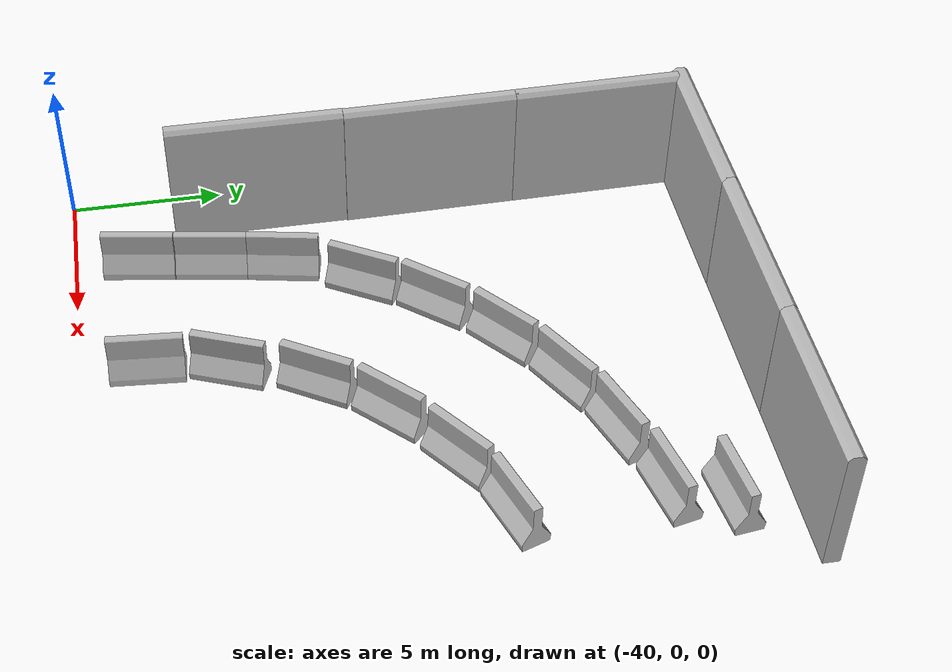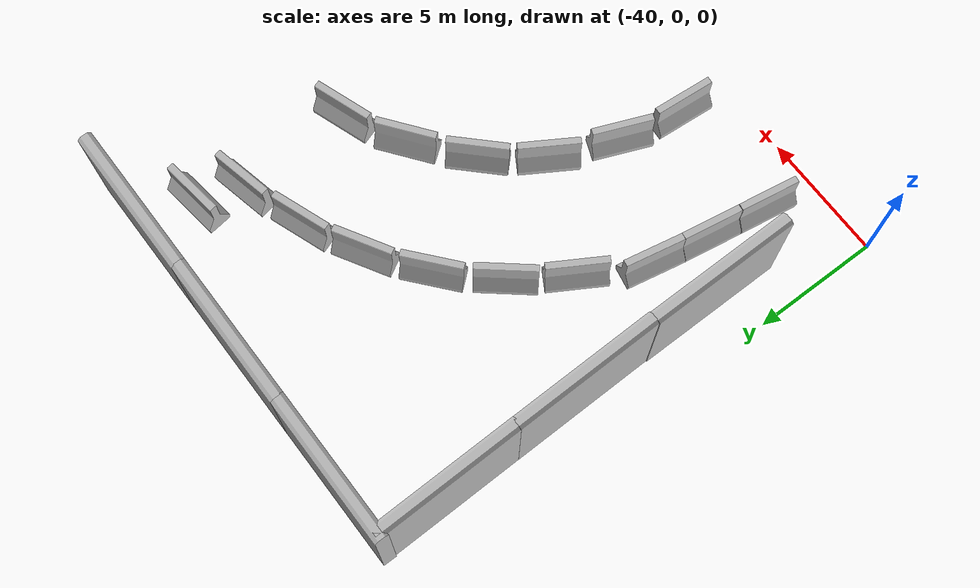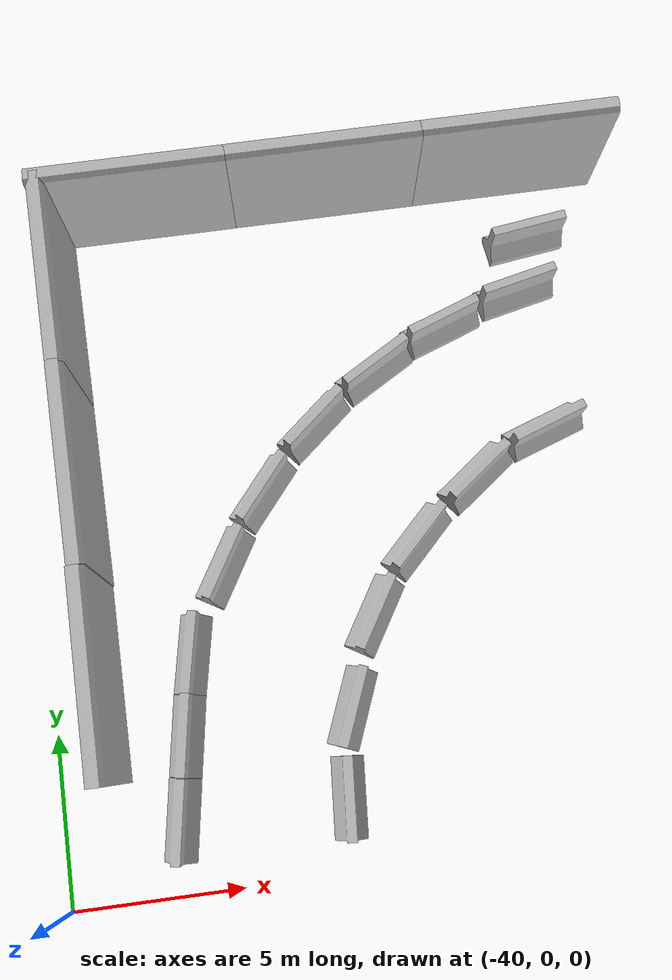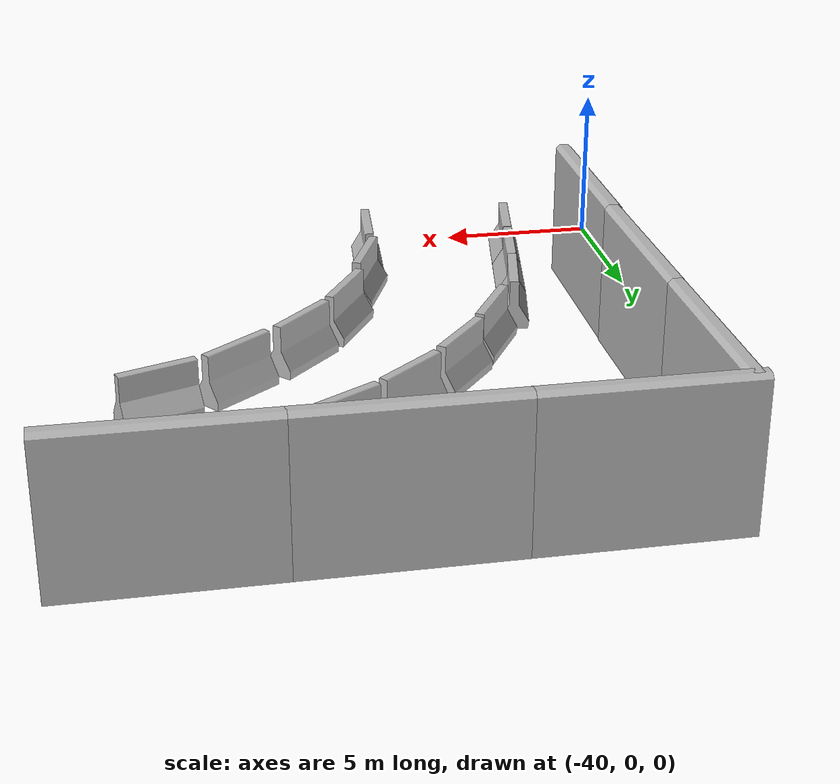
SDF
<sdf version="1.7">
 <world name="default">
  <model name="aws_robomaker_racetrack_StonePier_01_03">
   <frame name="aws_StonePier_01::__model__" attached_to="aws_StonePier_01::body">
    <pose relative_to="__model__">0 0 0 0 -0 0</pose>
   </frame>
   <link name="aws_StonePier_01::body">
    <pose relative_to="aws_StonePier_01::__model__">0 0 0 0 -0 0</pose>
    <inertial>
     <mass>10</mass>
     <inertia><ixx>0</ixx><ixy>0</ixy><ixz>0</ixz><iyy>0</iyy><iyz>0</iyz><izz>0</izz></inertia>
    </inertial>
    <visual name="visual">
     <geometry>
      <mesh><uri>file://models/aws_robomaker_racetrack_StonePier_01/meshes/aws_StonePier_01_visual.DAE</uri></mesh>
     </geometry>
     <material><shader type="pixel"><normal_map>__default__</normal_map></shader></material>
     <meta><layer>0</layer></meta>
    </visual>
    <collision name="collision_0">
     <geometry>
      <mesh>
       <uri>file://models/aws_robomaker_racetrack_StonePier_01/meshes/aws_StonePier_01_collision.DAE</uri>
       <scale>1 1 1</scale>
      </mesh>
     </geometry>
     <surface>
      <friction>
       <ode><mu>1</mu><mu2>1</mu2><fdir1>0 0 0</fdir1><slip1>0</slip1><slip2>0</slip2></ode>
       <torsional>
        <coefficient>1</coefficient>
        <patch_radius>0</patch_radius>
        <surface_radius>0</surface_radius>
        <use_patch_radius>1</use_patch_radius>
        <ode><slip>0</slip></ode>
       </torsional>
      </friction>
      <bounce><restitution_coefficient>0</restitution_coefficient><threshold>1e+06</threshold></bounce>
      <contact>
       <collide_without_contact>0</collide_without_contact>
       <collide_without_contact_bitmask>1</collide_without_contact_bitmask>
       <collide_bitmask>1</collide_bitmask>
       <ode>
        <soft_cfm>0</soft_cfm>
        <soft_erp>0.2</soft_erp>
        <kp>1e+13</kp>
        <kd>1</kd>
        <max_vel>0.01</max_vel>
        <min_depth>0</min_depth>
       </ode>
       <bullet>
        <split_impulse>1</split_impulse>
        <split_impulse_penetration_threshold>-0.01</split_impulse_penetration_threshold>
        <soft_cfm>0</soft_cfm>
        <soft_erp>0.2</soft_erp>
        <kp>1e+13</kp>
        <kd>1</kd>
       </bullet>
      </contact>
     </surface>
    </collision>
   </link>
   <static>1</static>
   <pose>-24.2891 12.2118 0.054 0 -0 0.334226</pose>
  </model>
  <model name="aws_robomaker_racetrack_StonePier_01_35">
   <frame name="aws_StonePier_01::__model__" attached_to="aws_StonePier_01::body">
    <pose relative_to="__model__">0 0 0 0 -0 0</pose>
   </frame>
   <link name="aws_StonePier_01::body">
    <pose relative_to="aws_StonePier_01::__model__">0 0 0 0 -0 0</pose>
    <inertial>
     <mass>10</mass>
     <inertia><ixx>0</ixx><ixy>0</ixy><ixz>0</ixz><iyy>0</iyy><iyz>0</iyz><izz>0</izz></inertia>
    </inertial>
    <visual name="visual">
     <geometry>
      <mesh><uri>file://models/aws_robomaker_racetrack_StonePier_01/meshes/aws_StonePier_01_visual.DAE</uri></mesh>
     </geometry>
     <material><shader type="pixel"><normal_map>__default__</normal_map></shader></material>
     <meta><layer>0</layer></meta>
    </visual>
    <collision name="collision_0">
     <geometry>
      <mesh>
       <uri>file://models/aws_robomaker_racetrack_StonePier_01/meshes/aws_StonePier_01_collision.DAE</uri>
       <scale>1 1 1</scale>
      </mesh>
     </geometry>
     <surface>
      <friction>
       <ode><mu>1</mu><mu2>1</mu2><fdir1>0 0 0</fdir1><slip1>0</slip1><slip2>0</slip2></ode>
       <torsional>
        <coefficient>1</coefficient>
        <patch_radius>0</patch_radius>
        <surface_radius>0</surface_radius>
        <use_patch_radius>1</use_patch_radius>
        <ode><slip>0</slip></ode>
       </torsional>
      </friction>
      <bounce><restitution_coefficient>0</restitution_coefficient><threshold>1e+06</threshold></bounce>
      <contact>
       <collide_without_contact>0</collide_without_contact>
       <collide_without_contact_bitmask>1</collide_without_contact_bitmask>
       <collide_bitmask>1</collide_bitmask>
       <ode>
        <soft_cfm>0</soft_cfm>
        <soft_erp>0.2</soft_erp>
        <kp>1e+13</kp>
        <kd>1</kd>
        <max_vel>0.01</max_vel>
        <min_depth>0</min_depth>
       </ode>
       <bullet>
        <split_impulse>1</split_impulse>
        <split_impulse_penetration_threshold>-0.01</split_impulse_penetration_threshold>
        <soft_cfm>0</soft_cfm>
        <soft_erp>0.2</soft_erp>
        <kp>1e+13</kp>
        <kd>1</kd>
       </bullet>
      </contact>
     </surface>
    </collision>
   </link>
   <static>1</static>
   <pose>-23.832 18.561 0.054 0 -0 0.133251</pose>
  </model>
  <model name="aws_robomaker_racetrack_StonePier_01_36">
   <frame name="aws_StonePier_01::__model__" attached_to="aws_StonePier_01::body">
    <pose relative_to="__model__">0 0 0 0 -0 0</pose>
   </frame>
   <link name="aws_StonePier_01::body">
    <pose relative_to="aws_StonePier_01::__model__">0 0 0 0 -0 0</pose>
    <inertial>
     <mass>10</mass>
     <inertia><ixx>0</ixx><ixy>0</ixy><ixz>0</ixz><iyy>0</iyy><iyz>0</iyz><izz>0</izz></inertia>
    </inertial>
    <visual name="visual">
     <geometry>
      <mesh><uri>file://models/aws_robomaker_racetrack_StonePier_01/meshes/aws_StonePier_01_visual.DAE</uri></mesh>
     </geometry>
     <material><shader type="pixel"><normal_map>__default__</normal_map></shader></material>
     <meta><layer>0</layer></meta>
    </visual>
    <collision name="collision_0">
     <geometry>
      <mesh>
       <uri>file://models/aws_robomaker_racetrack_StonePier_01/meshes/aws_StonePier_01_collision.DAE</uri>
       <scale>1 1 1</scale>
      </mesh>
     </geometry>
     <surface>
      <friction>
       <ode><mu>1</mu><mu2>1</mu2><fdir1>0 0 0</fdir1><slip1>0</slip1><slip2>0</slip2></ode>
       <torsional>
        <coefficient>1</coefficient>
        <patch_radius>0</patch_radius>
        <surface_radius>0</surface_radius>
        <use_patch_radius>1</use_patch_radius>
        <ode><slip>0</slip></ode>
       </torsional>
      </friction>
      <bounce><restitution_coefficient>0</restitution_coefficient><threshold>1e+06</threshold></bounce>
      <contact>
       <collide_without_contact>0</collide_without_contact>
       <collide_without_contact_bitmask>1</collide_without_contact_bitmask>
       <collide_bitmask>1</collide_bitmask>
       <ode>
        <soft_cfm>0</soft_cfm>
        <soft_erp>0.2</soft_erp>
        <kp>1e+13</kp>
        <kd>1</kd>
        <max_vel>0.01</max_vel>
        <min_depth>0</min_depth>
       </ode>
       <bullet>
        <split_impulse>1</split_impulse>
        <split_impulse_penetration_threshold>-0.01</split_impulse_penetration_threshold>
        <soft_cfm>0</soft_cfm>
        <soft_erp>0.2</soft_erp>
        <kp>1e+13</kp>
        <kd>1</kd>
       </bullet>
      </contact>
     </surface>
    </collision>
   </link>
   <static>1</static>
   <pose>-26.5946 11.0295 0.054 0 0.00036 0.646791</pose>
  </model>
  <model name="aws_robomaker_racetrack_StonePier_01_37">
   <frame name="aws_StonePier_01::__model__" attached_to="aws_StonePier_01::body">
    <pose relative_to="__model__">0 0 0 0 -0 0</pose>
   </frame>
   <link name="aws_StonePier_01::body">
    <pose relative_to="aws_StonePier_01::__model__">0 0 0 0 -0 0</pose>
    <inertial>
     <mass>10</mass>
     <inertia><ixx>0</ixx><ixy>0</ixy><ixz>0</ixz><iyy>0</iyy><iyz>0</iyz><izz>0</izz></inertia>
    </inertial>
    <visual name="visual">
     <geometry>
      <mesh><uri>file://models/aws_robomaker_racetrack_StonePier_01/meshes/aws_StonePier_01_visual.DAE</uri></mesh>
     </geometry>
     <material><shader type="pixel"><normal_map>__default__</normal_map></shader></material>
     <meta><layer>0</layer></meta>
    </visual>
    <collision name="collision_0">
     <geometry>
      <mesh>
       <uri>file://models/aws_robomaker_racetrack_StonePier_01/meshes/aws_StonePier_01_collision.DAE</uri>
       <scale>1 1 1</scale>
      </mesh>
     </geometry>
     <surface>
      <friction>
       <ode><mu>1</mu><mu2>1</mu2><fdir1>0 0 0</fdir1><slip1>0</slip1><slip2>0</slip2></ode>
       <torsional>
        <coefficient>1</coefficient>
        <patch_radius>0</patch_radius>
        <surface_radius>0</surface_radius>
        <use_patch_radius>1</use_patch_radius>
        <ode><slip>0</slip></ode>
       </torsional>
      </friction>
      <bounce><restitution_coefficient>0</restitution_coefficient><threshold>1e+06</threshold></bounce>
      <contact>
       <collide_without_contact>0</collide_without_contact>
       <collide_without_contact_bitmask>1</collide_without_contact_bitmask>
       <collide_bitmask>1</collide_bitmask>
       <ode>
        <soft_cfm>0</soft_cfm>
        <soft_erp>0.2</soft_erp>
        <kp>1e+13</kp>
        <kd>1</kd>
        <max_vel>0.01</max_vel>
        <min_depth>0</min_depth>
       </ode>
       <bullet>
        <split_impulse>1</split_impulse>
        <split_impulse_penetration_threshold>-0.01</split_impulse_penetration_threshold>
        <soft_cfm>0</soft_cfm>
        <soft_erp>0.2</soft_erp>
        <kp>1e+13</kp>
        <kd>1</kd>
       </bullet>
      </contact>
     </surface>
    </collision>
   </link>
   <static>1</static>
   <pose>-24.4271 16.8105 0.054 0 -0 0.217772</pose>
  </model>
  <model name="aws_robomaker_racetrack_StonePier_01_38">
   <frame name="aws_StonePier_01::__model__" attached_to="aws_StonePier_01::body">
    <pose relative_to="__model__">0 0 0 0 -0 0</pose>
   </frame>
   <link name="aws_StonePier_01::body">
    <pose relative_to="aws_StonePier_01::__model__">0 0 0 0 -0 0</pose>
    <inertial>
     <mass>10</mass>
     <inertia><ixx>0</ixx><ixy>0</ixy><ixz>0</ixz><iyy>0</iyy><iyz>0</iyz><izz>0</izz></inertia>
    </inertial>
    <visual name="visual">
     <geometry>
      <mesh><uri>file://models/aws_robomaker_racetrack_StonePier_01/meshes/aws_StonePier_01_visual.DAE</uri></mesh>
     </geometry>
     <material><shader type="pixel"><normal_map>__default__</normal_map></shader></material>
     <meta><layer>0</layer></meta>
    </visual>
    <collision name="collision_0">
     <geometry>
      <mesh>
       <uri>file://models/aws_robomaker_racetrack_StonePier_01/meshes/aws_StonePier_01_collision.DAE</uri>
       <scale>1 1 1</scale>
      </mesh>
     </geometry>
     <surface>
      <friction>
       <ode><mu>1</mu><mu2>1</mu2><fdir1>0 0 0</fdir1><slip1>0</slip1><slip2>0</slip2></ode>
       <torsional>
        <coefficient>1</coefficient>
        <patch_radius>0</patch_radius>
        <surface_radius>0</surface_radius>
        <use_patch_radius>1</use_patch_radius>
        <ode><slip>0</slip></ode>
       </torsional>
      </friction>
      <bounce><restitution_coefficient>0</restitution_coefficient><threshold>1e+06</threshold></bounce>
      <contact>
       <collide_without_contact>0</collide_without_contact>
       <collide_without_contact_bitmask>1</collide_without_contact_bitmask>
       <collide_bitmask>1</collide_bitmask>
       <ode>
        <soft_cfm>0</soft_cfm>
        <soft_erp>0.2</soft_erp>
        <kp>1e+13</kp>
        <kd>1</kd>
        <max_vel>0.01</max_vel>
        <min_depth>0</min_depth>
       </ode>
       <bullet>
        <split_impulse>1</split_impulse>
        <split_impulse_penetration_threshold>-0.01</split_impulse_penetration_threshold>
        <soft_cfm>0</soft_cfm>
        <soft_erp>0.2</soft_erp>
        <kp>1e+13</kp>
        <kd>1</kd>
       </bullet>
      </contact>
     </surface>
    </collision>
   </link>
   <static>1</static>
   <pose>-28.6752 9.30494 0.054 0 -0 0.789682</pose>
  </model>
  <model name="aws_robomaker_racetrack_StonePier_01_39">
   <frame name="aws_StonePier_01::__model__" attached_to="aws_StonePier_01::body">
    <pose relative_to="__model__">0 0 0 0 -0 0</pose>
   </frame>
   <link name="aws_StonePier_01::body">
    <pose relative_to="aws_StonePier_01::__model__">0 0 0 0 -0 0</pose>
    <inertial>
     <mass>10</mass>
     <inertia><ixx>0</ixx><ixy>0</ixy><ixz>0</ixz><iyy>0</iyy><iyz>0</iyz><izz>0</izz></inertia>
    </inertial>
    <visual name="visual">
     <geometry>
      <mesh><uri>file://models/aws_robomaker_racetrack_StonePier_01/meshes/aws_StonePier_01_visual.DAE</uri></mesh>
     </geometry>
     <material><shader type="pixel"><normal_map>__default__</normal_map></shader></material>
     <meta><layer>0</layer></meta>
    </visual>
    <collision name="collision_0">
     <geometry>
      <mesh>
       <uri>file://models/aws_robomaker_racetrack_StonePier_01/meshes/aws_StonePier_01_collision.DAE</uri>
       <scale>1 1 1</scale>
      </mesh>
     </geometry>
     <surface>
      <friction>
       <ode><mu>1</mu><mu2>1</mu2><fdir1>0 0 0</fdir1><slip1>0</slip1><slip2>0</slip2></ode>
       <torsional>
        <coefficient>1</coefficient>
        <patch_radius>0</patch_radius>
        <surface_radius>0</surface_radius>
        <use_patch_radius>1</use_patch_radius>
        <ode><slip>0</slip></ode>
       </torsional>
      </friction>
      <bounce><restitution_coefficient>0</restitution_coefficient><threshold>1e+06</threshold></bounce>
      <contact>
       <collide_without_contact>0</collide_without_contact>
       <collide_without_contact_bitmask>1</collide_without_contact_bitmask>
       <collide_bitmask>1</collide_bitmask>
       <ode>
        <soft_cfm>0</soft_cfm>
        <soft_erp>0.2</soft_erp>
        <kp>1e+13</kp>
        <kd>1</kd>
        <max_vel>0.01</max_vel>
        <min_depth>0</min_depth>
       </ode>
       <bullet>
        <split_impulse>1</split_impulse>
        <split_impulse_penetration_threshold>-0.01</split_impulse_penetration_threshold>
        <soft_cfm>0</soft_cfm>
        <soft_erp>0.2</soft_erp>
        <kp>1e+13</kp>
        <kd>1</kd>
       </bullet>
      </contact>
     </surface>
    </collision>
   </link>
   <static>1</static>
   <pose>-30.2584 7.24451 0.054 0 -0 1.02306</pose>
  </model>
  <model name="aws_robomaker_racetrack_StonePier_01_47">
   <frame name="aws_StonePier_01::__model__" attached_to="aws_StonePier_01::body">
    <pose relative_to="__model__">0 0 0 0 -0 0</pose>
   </frame>
   <link name="aws_StonePier_01::body">
    <pose relative_to="aws_StonePier_01::__model__">0 0 0 0 -0 0</pose>
    <inertial>
     <mass>10</mass>
     <inertia><ixx>0</ixx><ixy>0</ixy><ixz>0</ixz><iyy>0</iyy><iyz>0</iyz><izz>0</izz></inertia>
    </inertial>
    <visual name="visual">
     <geometry>
      <mesh><uri>file://models/aws_robomaker_racetrack_StonePier_01/meshes/aws_StonePier_01_visual.DAE</uri></mesh>
     </geometry>
     <material><shader type="pixel"><normal_map>__default__</normal_map></shader></material>
     <meta><layer>0</layer></meta>
    </visual>
    <collision name="collision_0">
     <geometry>
      <mesh>
       <uri>file://models/aws_robomaker_racetrack_StonePier_01/meshes/aws_StonePier_01_collision.DAE</uri>
       <scale>1 1 1</scale>
      </mesh>
     </geometry>
     <surface>
      <friction>
       <ode><mu>1</mu><mu2>1</mu2><fdir1>0 0 0</fdir1><slip1>0</slip1><slip2>0</slip2></ode>
       <torsional>
        <coefficient>1</coefficient>
        <patch_radius>0</patch_radius>
        <surface_radius>0</surface_radius>
        <use_patch_radius>1</use_patch_radius>
        <ode><slip>0</slip></ode>
       </torsional>
      </friction>
      <bounce><restitution_coefficient>0</restitution_coefficient><threshold>1e+06</threshold></bounce>
      <contact>
       <collide_without_contact>0</collide_without_contact>
       <collide_without_contact_bitmask>1</collide_without_contact_bitmask>
       <collide_bitmask>1</collide_bitmask>
       <ode>
        <soft_cfm>0</soft_cfm>
        <soft_erp>0.2</soft_erp>
        <kp>1e+13</kp>
        <kd>1</kd>
        <max_vel>0.01</max_vel>
        <min_depth>0</min_depth>
       </ode>
       <bullet>
        <split_impulse>1</split_impulse>
        <split_impulse_penetration_threshold>-0.01</split_impulse_penetration_threshold>
        <soft_cfm>0</soft_cfm>
        <soft_erp>0.2</soft_erp>
        <kp>1e+13</kp>
        <kd>1</kd>
       </bullet>
      </contact>
     </surface>
    </collision>
   </link>
   <static>1</static>
   <pose>-31.7363 2.12666 0.054 0 0 -1.64853</pose>
  </model>
  <model name="aws_robomaker_racetrack_StonePier_01_48">
   <frame name="aws_StonePier_01::__model__" attached_to="aws_StonePier_01::body">
    <pose relative_to="__model__">0 0 0 0 -0 0</pose>
   </frame>
   <link name="aws_StonePier_01::body">
    <pose relative_to="aws_StonePier_01::__model__">0 0 0 0 -0 0</pose>
    <inertial>
     <mass>10</mass>
     <inertia><ixx>0</ixx><ixy>0</ixy><ixz>0</ixz><iyy>0</iyy><iyz>0</iyz><izz>0</izz></inertia>
    </inertial>
    <visual name="visual">
     <geometry>
      <mesh><uri>file://models/aws_robomaker_racetrack_StonePier_01/meshes/aws_StonePier_01_visual.DAE</uri></mesh>
     </geometry>
     <material><shader type="pixel"><normal_map>__default__</normal_map></shader></material>
     <meta><layer>0</layer></meta>
    </visual>
    <collision name="collision_0">
     <geometry>
      <mesh>
       <uri>file://models/aws_robomaker_racetrack_StonePier_01/meshes/aws_StonePier_01_collision.DAE</uri>
       <scale>1 1 1</scale>
      </mesh>
     </geometry>
     <surface>
      <friction>
       <ode><mu>1</mu><mu2>1</mu2><fdir1>0 0 0</fdir1><slip1>0</slip1><slip2>0</slip2></ode>
       <torsional>
        <coefficient>1</coefficient>
        <patch_radius>0</patch_radius>
        <surface_radius>0</surface_radius>
        <use_patch_radius>1</use_patch_radius>
        <ode><slip>0</slip></ode>
       </torsional>
      </friction>
      <bounce><restitution_coefficient>0</restitution_coefficient><threshold>1e+06</threshold></bounce>
      <contact>
       <collide_without_contact>0</collide_without_contact>
       <collide_without_contact_bitmask>1</collide_without_contact_bitmask>
       <collide_bitmask>1</collide_bitmask>
       <ode>
        <soft_cfm>0</soft_cfm>
        <soft_erp>0.2</soft_erp>
        <kp>1e+13</kp>
        <kd>1</kd>
        <max_vel>0.01</max_vel>
        <min_depth>0</min_depth>
       </ode>
       <bullet>
        <split_impulse>1</split_impulse>
        <split_impulse_penetration_threshold>-0.01</split_impulse_penetration_threshold>
        <soft_cfm>0</soft_cfm>
        <soft_erp>0.2</soft_erp>
        <kp>1e+13</kp>
        <kd>1</kd>
       </bullet>
      </contact>
     </surface>
    </collision>
   </link>
   <static>1</static>
   <pose>-31.2901 4.63965 0.054 0 0 -1.9545</pose>
  </model>
  <model name="aws_robomaker_racetrack_StonePier_01_60">
   <frame name="aws_StonePier_01::__model__" attached_to="aws_StonePier_01::body">
    <pose relative_to="__model__">0 0 0 0 -0 0</pose>
   </frame>
   <link name="aws_StonePier_01::body">
    <pose relative_to="aws_StonePier_01::__model__">0 0 0 0 -0 0</pose>
    <inertial>
     <mass>10</mass>
     <inertia><ixx>0</ixx><ixy>0</ixy><ixz>0</ixz><iyy>0</iyy><iyz>0</iyz><izz>0</izz></inertia>
    </inertial>
    <visual name="visual">
     <geometry>
      <mesh><uri>file://models/aws_robomaker_racetrack_StonePier_01/meshes/aws_StonePier_01_visual.DAE</uri></mesh>
     </geometry>
     <material><shader type="pixel"><normal_map>__default__</normal_map></shader></material>
     <meta><layer>0</layer></meta>
    </visual>
    <collision name="collision_0">
     <geometry>
      <mesh>
       <uri>file://models/aws_robomaker_racetrack_StonePier_01/meshes/aws_StonePier_01_collision.DAE</uri>
       <scale>1 1 1</scale>
      </mesh>
     </geometry>
     <surface>
      <friction>
       <ode><mu>1</mu><mu2>1</mu2><fdir1>0 0 0</fdir1><slip1>0</slip1><slip2>0</slip2></ode>
       <torsional>
        <coefficient>1</coefficient>
        <patch_radius>0</patch_radius>
        <surface_radius>0</surface_radius>
        <use_patch_radius>1</use_patch_radius>
        <ode><slip>0</slip></ode>
       </torsional>
      </friction>
      <bounce><restitution_coefficient>0</restitution_coefficient><threshold>1e+06</threshold></bounce>
      <contact>
       <collide_without_contact>0</collide_without_contact>
       <collide_without_contact_bitmask>1</collide_without_contact_bitmask>
       <collide_bitmask>1</collide_bitmask>
       <ode>
        <soft_cfm>0</soft_cfm>
        <soft_erp>0.2</soft_erp>
        <kp>1e+13</kp>
        <kd>1</kd>
        <max_vel>0.01</max_vel>
        <min_depth>0</min_depth>
       </ode>
       <bullet>
        <split_impulse>1</split_impulse>
        <split_impulse_penetration_threshold>-0.01</split_impulse_penetration_threshold>
        <soft_cfm>0</soft_cfm>
        <soft_erp>0.2</soft_erp>
        <kp>1e+13</kp>
        <kd>1</kd>
       </bullet>
      </contact>
     </surface>
    </collision>
   </link>
   <static>1</static>
   <pose>-36.5742 2.13483 -4.9e-05 -4.8e-05 -6.2e-05 1.40891</pose>
  </model>
  <model name="aws_robomaker_racetrack_StonePier_01_61">
   <frame name="aws_StonePier_01::__model__" attached_to="aws_StonePier_01::body">
    <pose relative_to="__model__">0 0 0 0 -0 0</pose>
   </frame>
   <link name="aws_StonePier_01::body">
    <pose relative_to="aws_StonePier_01::__model__">0 0 0 0 -0 0</pose>
    <inertial>
     <mass>10</mass>
     <inertia><ixx>0</ixx><ixy>0</ixy><ixz>0</ixz><iyy>0</iyy><iyz>0</iyz><izz>0</izz></inertia>
    </inertial>
    <visual name="visual">
     <geometry>
      <mesh><uri>file://models/aws_robomaker_racetrack_StonePier_01/meshes/aws_StonePier_01_visual.DAE</uri></mesh>
     </geometry>
     <material><shader type="pixel"><normal_map>__default__</normal_map></shader></material>
     <meta><layer>0</layer></meta>
    </visual>
    <collision name="collision_0">
     <geometry>
      <mesh>
       <uri>file://models/aws_robomaker_racetrack_StonePier_01/meshes/aws_StonePier_01_collision.DAE</uri>
       <scale>1 1 1</scale>
      </mesh>
     </geometry>
     <surface>
      <friction>
       <ode><mu>1</mu><mu2>1</mu2><fdir1>0 0 0</fdir1><slip1>0</slip1><slip2>0</slip2></ode>
       <torsional>
        <coefficient>1</coefficient>
        <patch_radius>0</patch_radius>
        <surface_radius>0</surface_radius>
        <use_patch_radius>1</use_patch_radius>
        <ode><slip>0</slip></ode>
       </torsional>
      </friction>
      <bounce><restitution_coefficient>0</restitution_coefficient><threshold>1e+06</threshold></bounce>
      <contact>
       <collide_without_contact>0</collide_without_contact>
       <collide_without_contact_bitmask>1</collide_without_contact_bitmask>
       <collide_bitmask>1</collide_bitmask>
       <ode>
        <soft_cfm>0</soft_cfm>
        <soft_erp>0.2</soft_erp>
        <kp>1e+13</kp>
        <kd>1</kd>
        <max_vel>0.01</max_vel>
        <min_depth>0</min_depth>
       </ode>
       <bullet>
        <split_impulse>1</split_impulse>
        <split_impulse_penetration_threshold>-0.01</split_impulse_penetration_threshold>
        <soft_cfm>0</soft_cfm>
        <soft_erp>0.2</soft_erp>
        <kp>1e+13</kp>
        <kd>1</kd>
       </bullet>
      </contact>
     </surface>
    </collision>
   </link>
   <static>1</static>
   <pose>-36.1891 4.48288 0.000698 -7e-05 -0.000662 1.40758</pose>
  </model>
  <model name="aws_robomaker_racetrack_StonePier_01_62">
   <frame name="aws_StonePier_01::__model__" attached_to="aws_StonePier_01::body">
    <pose relative_to="__model__">0 0 0 0 -0 0</pose>
   </frame>
   <link name="aws_StonePier_01::body">
    <pose relative_to="aws_StonePier_01::__model__">0 0 0 0 -0 0</pose>
    <inertial>
     <mass>10</mass>
     <inertia><ixx>0</ixx><ixy>0</ixy><ixz>0</ixz><iyy>0</iyy><iyz>0</iyz><izz>0</izz></inertia>
    </inertial>
    <visual name="visual">
     <geometry>
      <mesh><uri>file://models/aws_robomaker_racetrack_StonePier_01/meshes/aws_StonePier_01_visual.DAE</uri></mesh>
     </geometry>
     <material><shader type="pixel"><normal_map>__default__</normal_map></shader></material>
     <meta><layer>0</layer></meta>
    </visual>
    <collision name="collision_0">
     <geometry>
      <mesh>
       <uri>file://models/aws_robomaker_racetrack_StonePier_01/meshes/aws_StonePier_01_collision.DAE</uri>
       <scale>1 1 1</scale>
      </mesh>
     </geometry>
     <surface>
      <friction>
       <ode><mu>1</mu><mu2>1</mu2><fdir1>0 0 0</fdir1><slip1>0</slip1><slip2>0</slip2></ode>
       <torsional>
        <coefficient>1</coefficient>
        <patch_radius>0</patch_radius>
        <surface_radius>0</surface_radius>
        <use_patch_radius>1</use_patch_radius>
        <ode><slip>0</slip></ode>
       </torsional>
      </friction>
      <bounce><restitution_coefficient>0</restitution_coefficient><threshold>1e+06</threshold></bounce>
      <contact>
       <collide_without_contact>0</collide_without_contact>
       <collide_without_contact_bitmask>1</collide_without_contact_bitmask>
       <collide_bitmask>1</collide_bitmask>
       <ode>
        <soft_cfm>0</soft_cfm>
        <soft_erp>0.2</soft_erp>
        <kp>1e+13</kp>
        <kd>1</kd>
        <max_vel>0.01</max_vel>
        <min_depth>0</min_depth>
       </ode>
       <bullet>
        <split_impulse>1</split_impulse>
        <split_impulse_penetration_threshold>-0.01</split_impulse_penetration_threshold>
        <soft_cfm>0</soft_cfm>
        <soft_erp>0.2</soft_erp>
        <kp>1e+13</kp>
        <kd>1</kd>
       </bullet>
      </contact>
     </surface>
    </collision>
   </link>
   <static>1</static>
   <pose>-35.7706 6.79941 0.00067 5.5e-05 0.000534 1.37633</pose>
  </model>
  <model name="aws_robomaker_racetrack_StonePier_01_63">
   <frame name="aws_StonePier_01::__model__" attached_to="aws_StonePier_01::body">
    <pose relative_to="__model__">0 0 0 0 -0 0</pose>
   </frame>
   <link name="aws_StonePier_01::body">
    <pose relative_to="aws_StonePier_01::__model__">0 0 0 0 -0 0</pose>
    <inertial>
     <mass>10</mass>
     <inertia><ixx>0</ixx><ixy>0</ixy><ixz>0</ixz><iyy>0</iyy><iyz>0</iyz><izz>0</izz></inertia>
    </inertial>
    <visual name="visual">
     <geometry>
      <mesh><uri>file://models/aws_robomaker_racetrack_StonePier_01/meshes/aws_StonePier_01_visual.DAE</uri></mesh>
     </geometry>
     <material><shader type="pixel"><normal_map>__default__</normal_map></shader></material>
     <meta><layer>0</layer></meta>
    </visual>
    <collision name="collision_0">
     <geometry>
      <mesh>
       <uri>file://models/aws_robomaker_racetrack_StonePier_01/meshes/aws_StonePier_01_collision.DAE</uri>
       <scale>1 1 1</scale>
      </mesh>
     </geometry>
     <surface>
      <friction>
       <ode><mu>1</mu><mu2>1</mu2><fdir1>0 0 0</fdir1><slip1>0</slip1><slip2>0</slip2></ode>
       <torsional>
        <coefficient>1</coefficient>
        <patch_radius>0</patch_radius>
        <surface_radius>0</surface_radius>
        <use_patch_radius>1</use_patch_radius>
        <ode><slip>0</slip></ode>
       </torsional>
      </friction>
      <bounce><restitution_coefficient>0</restitution_coefficient><threshold>1e+06</threshold></bounce>
      <contact>
       <collide_without_contact>0</collide_without_contact>
       <collide_without_contact_bitmask>1</collide_without_contact_bitmask>
       <collide_bitmask>1</collide_bitmask>
       <ode>
        <soft_cfm>0</soft_cfm>
        <soft_erp>0.2</soft_erp>
        <kp>1e+13</kp>
        <kd>1</kd>
        <max_vel>0.01</max_vel>
        <min_depth>0</min_depth>
       </ode>
       <bullet>
        <split_impulse>1</split_impulse>
        <split_impulse_penetration_threshold>-0.01</split_impulse_penetration_threshold>
        <soft_cfm>0</soft_cfm>
        <soft_erp>0.2</soft_erp>
        <kp>1e+13</kp>
        <kd>1</kd>
       </bullet>
      </contact>
     </surface>
    </collision>
   </link>
   <static>1</static>
   <pose>-34.5101 9.28526 0.054 0 -0 1.03684</pose>
  </model>
  <model name="aws_robomaker_racetrack_StonePier_01_64">
   <frame name="aws_StonePier_01::__model__" attached_to="aws_StonePier_01::body">
    <pose relative_to="__model__">0 0 0 0 -0 0</pose>
   </frame>
   <link name="aws_StonePier_01::body">
    <pose relative_to="aws_StonePier_01::__model__">0 0 0 0 -0 0</pose>
    <inertial>
     <mass>10</mass>
     <inertia><ixx>0</ixx><ixy>0</ixy><ixz>0</ixz><iyy>0</iyy><iyz>0</iyz><izz>0</izz></inertia>
    </inertial>
    <visual name="visual">
     <geometry>
      <mesh><uri>file://models/aws_robomaker_racetrack_StonePier_01/meshes/aws_StonePier_01_visual.DAE</uri></mesh>
     </geometry>
     <material><shader type="pixel"><normal_map>__default__</normal_map></shader></material>
     <meta><layer>0</layer></meta>
    </visual>
    <collision name="collision_0">
     <geometry>
      <mesh>
       <uri>file://models/aws_robomaker_racetrack_StonePier_01/meshes/aws_StonePier_01_collision.DAE</uri>
       <scale>1 1 1</scale>
      </mesh>
     </geometry>
     <surface>
      <friction>
       <ode><mu>1</mu><mu2>1</mu2><fdir1>0 0 0</fdir1><slip1>0</slip1><slip2>0</slip2></ode>
       <torsional>
        <coefficient>1</coefficient>
        <patch_radius>0</patch_radius>
        <surface_radius>0</surface_radius>
        <use_patch_radius>1</use_patch_radius>
        <ode><slip>0</slip></ode>
       </torsional>
      </friction>
      <bounce><restitution_coefficient>0</restitution_coefficient><threshold>1e+06</threshold></bounce>
      <contact>
       <collide_without_contact>0</collide_without_contact>
       <collide_without_contact_bitmask>1</collide_without_contact_bitmask>
       <collide_bitmask>1</collide_bitmask>
       <ode>
        <soft_cfm>0</soft_cfm>
        <soft_erp>0.2</soft_erp>
        <kp>1e+13</kp>
        <kd>1</kd>
        <max_vel>0.01</max_vel>
        <min_depth>0</min_depth>
       </ode>
       <bullet>
        <split_impulse>1</split_impulse>
        <split_impulse_penetration_threshold>-0.01</split_impulse_penetration_threshold>
        <soft_cfm>0</soft_cfm>
        <soft_erp>0.2</soft_erp>
        <kp>1e+13</kp>
        <kd>1</kd>
       </bullet>
      </contact>
     </surface>
    </collision>
   </link>
   <static>1</static>
   <pose>-33.1083 11.4014 0.054 0 -0 0.877747</pose>
  </model>
  <model name="aws_robomaker_racetrack_StonePier_01_65">
   <frame name="aws_StonePier_01::__model__" attached_to="aws_StonePier_01::body">
    <pose relative_to="__model__">0 0 0 0 -0 0</pose>
   </frame>
   <link name="aws_StonePier_01::body">
    <pose relative_to="aws_StonePier_01::__model__">0 0 0 0 -0 0</pose>
    <inertial>
     <mass>10</mass>
     <inertia><ixx>0</ixx><ixy>0</ixy><ixz>0</ixz><iyy>0</iyy><iyz>0</iyz><izz>0</izz></inertia>
    </inertial>
    <visual name="visual">
     <geometry>
      <mesh><uri>file://models/aws_robomaker_racetrack_StonePier_01/meshes/aws_StonePier_01_visual.DAE</uri></mesh>
     </geometry>
     <material><shader type="pixel"><normal_map>__default__</normal_map></shader></material>
     <meta><layer>0</layer></meta>
    </visual>
    <collision name="collision_0">
     <geometry>
      <mesh>
       <uri>file://models/aws_robomaker_racetrack_StonePier_01/meshes/aws_StonePier_01_collision.DAE</uri>
       <scale>1 1 1</scale>
      </mesh>
     </geometry>
     <surface>
      <friction>
       <ode><mu>1</mu><mu2>1</mu2><fdir1>0 0 0</fdir1><slip1>0</slip1><slip2>0</slip2></ode>
       <torsional>
        <coefficient>1</coefficient>
        <patch_radius>0</patch_radius>
        <surface_radius>0</surface_radius>
        <use_patch_radius>1</use_patch_radius>
        <ode><slip>0</slip></ode>
       </torsional>
      </friction>
      <bounce><restitution_coefficient>0</restitution_coefficient><threshold>1e+06</threshold></bounce>
      <contact>
       <collide_without_contact>0</collide_without_contact>
       <collide_without_contact_bitmask>1</collide_without_contact_bitmask>
       <collide_bitmask>1</collide_bitmask>
       <ode>
        <soft_cfm>0</soft_cfm>
        <soft_erp>0.2</soft_erp>
        <kp>1e+13</kp>
        <kd>1</kd>
        <max_vel>0.01</max_vel>
        <min_depth>0</min_depth>
       </ode>
       <bullet>
        <split_impulse>1</split_impulse>
        <split_impulse_penetration_threshold>-0.01</split_impulse_penetration_threshold>
        <soft_cfm>0</soft_cfm>
        <soft_erp>0.2</soft_erp>
        <kp>1e+13</kp>
        <kd>1</kd>
       </bullet>
      </contact>
     </surface>
    </collision>
   </link>
   <static>1</static>
   <pose>-31.2882 13.312 0.054 0 -0 0.701782</pose>
  </model>
  <model name="aws_robomaker_racetrack_StonePier_01_66">
   <frame name="aws_StonePier_01::__model__" attached_to="aws_StonePier_01::body">
    <pose relative_to="__model__">0 0 0 0 -0 0</pose>
   </frame>
   <link name="aws_StonePier_01::body">
    <pose relative_to="aws_StonePier_01::__model__">0 0 0 0 -0 0</pose>
    <inertial>
     <mass>10</mass>
     <inertia><ixx>0</ixx><ixy>0</ixy><ixz>0</ixz><iyy>0</iyy><iyz>0</iyz><izz>0</izz></inertia>
    </inertial>
    <visual name="visual">
     <geometry>
      <mesh><uri>file://models/aws_robomaker_racetrack_StonePier_01/meshes/aws_StonePier_01_visual.DAE</uri></mesh>
     </geometry>
     <material><shader type="pixel"><normal_map>__default__</normal_map></shader></material>
     <meta><layer>0</layer></meta>
    </visual>
    <collision name="collision_0">
     <geometry>
      <mesh>
       <uri>file://models/aws_robomaker_racetrack_StonePier_01/meshes/aws_StonePier_01_collision.DAE</uri>
       <scale>1 1 1</scale>
      </mesh>
     </geometry>
     <surface>
      <friction>
       <ode><mu>1</mu><mu2>1</mu2><fdir1>0 0 0</fdir1><slip1>0</slip1><slip2>0</slip2></ode>
       <torsional>
        <coefficient>1</coefficient>
        <patch_radius>0</patch_radius>
        <surface_radius>0</surface_radius>
        <use_patch_radius>1</use_patch_radius>
        <ode><slip>0</slip></ode>
       </torsional>
      </friction>
      <bounce><restitution_coefficient>0</restitution_coefficient><threshold>1e+06</threshold></bounce>
      <contact>
       <collide_without_contact>0</collide_without_contact>
       <collide_without_contact_bitmask>1</collide_without_contact_bitmask>
       <collide_bitmask>1</collide_bitmask>
       <ode>
        <soft_cfm>0</soft_cfm>
        <soft_erp>0.2</soft_erp>
        <kp>1e+13</kp>
        <kd>1</kd>
        <max_vel>0.01</max_vel>
        <min_depth>0</min_depth>
       </ode>
       <bullet>
        <split_impulse>1</split_impulse>
        <split_impulse_penetration_threshold>-0.01</split_impulse_penetration_threshold>
        <soft_cfm>0</soft_cfm>
        <soft_erp>0.2</soft_erp>
        <kp>1e+13</kp>
        <kd>1</kd>
       </bullet>
      </contact>
     </surface>
    </collision>
   </link>
   <static>1</static>
   <pose>-29.1909 14.829 0.054 0 -0 0.529025</pose>
  </model>
  <model name="aws_robomaker_racetrack_StonePier_01_67">
   <frame name="aws_StonePier_01::__model__" attached_to="aws_StonePier_01::body">
    <pose relative_to="__model__">0 0 0 0 -0 0</pose>
   </frame>
   <link name="aws_StonePier_01::body">
    <pose relative_to="aws_StonePier_01::__model__">0 0 0 0 -0 0</pose>
    <inertial>
     <mass>10</mass>
     <inertia><ixx>0</ixx><ixy>0</ixy><ixz>0</ixz><iyy>0</iyy><iyz>0</iyz><izz>0</izz></inertia>
    </inertial>
    <visual name="visual">
     <geometry>
      <mesh><uri>file://models/aws_robomaker_racetrack_StonePier_01/meshes/aws_StonePier_01_visual.DAE</uri></mesh>
     </geometry>
     <material><shader type="pixel"><normal_map>__default__</normal_map></shader></material>
     <meta><layer>0</layer></meta>
    </visual>
    <collision name="collision_0">
     <geometry>
      <mesh>
       <uri>file://models/aws_robomaker_racetrack_StonePier_01/meshes/aws_StonePier_01_collision.DAE</uri>
       <scale>1 1 1</scale>
      </mesh>
     </geometry>
     <surface>
      <friction>
       <ode><mu>1</mu><mu2>1</mu2><fdir1>0 0 0</fdir1><slip1>0</slip1><slip2>0</slip2></ode>
       <torsional>
        <coefficient>1</coefficient>
        <patch_radius>0</patch_radius>
        <surface_radius>0</surface_radius>
        <use_patch_radius>1</use_patch_radius>
        <ode><slip>0</slip></ode>
       </torsional>
      </friction>
      <bounce><restitution_coefficient>0</restitution_coefficient><threshold>1e+06</threshold></bounce>
      <contact>
       <collide_without_contact>0</collide_without_contact>
       <collide_without_contact_bitmask>1</collide_without_contact_bitmask>
       <collide_bitmask>1</collide_bitmask>
       <ode>
        <soft_cfm>0</soft_cfm>
        <soft_erp>0.2</soft_erp>
        <kp>1e+13</kp>
        <kd>1</kd>
        <max_vel>0.01</max_vel>
        <min_depth>0</min_depth>
       </ode>
       <bullet>
        <split_impulse>1</split_impulse>
        <split_impulse_penetration_threshold>-0.01</split_impulse_penetration_threshold>
        <soft_cfm>0</soft_cfm>
        <soft_erp>0.2</soft_erp>
        <kp>1e+13</kp>
        <kd>1</kd>
       </bullet>
      </contact>
     </surface>
    </collision>
   </link>
   <static>1</static>
   <pose>-26.9181 15.9588 0.054 0 -0 0.349577</pose>
  </model>
  <model name="aws_robomaker_racetrack_Wall_01_06">
   <frame name="aws_Wall_01::__model__" attached_to="aws_Wall_01::body">
    <pose relative_to="__model__">0 0 0 0 -0 0</pose>
   </frame>
   <link name="aws_Wall_01::body">
    <pose relative_to="aws_Wall_01::__model__">0 0 0 0 -0 0</pose>
    <inertial>
     <mass>500</mass>
     <inertia><ixx>1</ixx><ixy>0</ixy><ixz>0</ixz><iyy>1</iyy><iyz>0</iyz><izz>1</izz></inertia>
    </inertial>
    <visual name="visual">
     <geometry>
      <mesh>
       <uri>file://models/aws_robomaker_racetrack_Wall_01/meshes/aws_Wall_01_visual.DAE</uri>
       <scale>2.59853 2.59853 2.59853</scale>
      </mesh>
     </geometry>
     <material><shader type="pixel"><normal_map>__default__</normal_map></shader></material>
     <meta><layer>1</layer></meta>
    </visual>
    <collision name="collision_0">
     <geometry>
      <mesh>
       <uri>file://models/aws_robomaker_racetrack_Wall_01/meshes/aws_Wall_01_collision.DAE</uri>
       <scale>2.59853 2.59853 2.59853</scale>
      </mesh>
     </geometry>
     <surface>
      <friction>
       <ode><mu>1</mu><mu2>1</mu2><fdir1>0 0 0</fdir1><slip1>0</slip1><slip2>0</slip2></ode>
       <torsional>
        <coefficient>1</coefficient>
        <patch_radius>0</patch_radius>
        <surface_radius>0</surface_radius>
        <use_patch_radius>1</use_patch_radius>
        <ode><slip>0</slip></ode>
       </torsional>
      </friction>
      <bounce><restitution_coefficient>0</restitution_coefficient><threshold>1e+06</threshold></bounce>
      <contact>
       <collide_without_contact>0</collide_without_contact>
       <collide_without_contact_bitmask>1</collide_without_contact_bitmask>
       <collide_bitmask>1</collide_bitmask>
       <ode>
        <soft_cfm>0</soft_cfm>
        <soft_erp>0.2</soft_erp>
        <kp>1e+13</kp>
        <kd>1</kd>
        <max_vel>0.01</max_vel>
        <min_depth>0</min_depth>
       </ode>
       <bullet>
        <split_impulse>1</split_impulse>
        <split_impulse_penetration_threshold>-0.01</split_impulse_penetration_threshold>
        <soft_cfm>0</soft_cfm>
        <soft_erp>0.2</soft_erp>
        <kp>1e+13</kp>
        <kd>1</kd>
       </bullet>
      </contact>
     </surface>
    </collision>
   </link>
   <static>1</static>
   <pose>-24.2154 20.6835 0 0 -0 0</pose>
  </model>
  <model name="aws_robomaker_racetrack_Wall_01_07">
   <frame name="aws_Wall_01::__model__" attached_to="aws_Wall_01::body">
    <pose relative_to="__model__">0 0 0 0 -0 0</pose>
   </frame>
   <link name="aws_Wall_01::body">
    <pose relative_to="aws_Wall_01::__model__">0 0 0 0 -0 0</pose>
    <inertial>
     <mass>500</mass>
     <inertia><ixx>1</ixx><ixy>0</ixy><ixz>0</ixz><iyy>1</iyy><iyz>0</iyz><izz>1</izz></inertia>
    </inertial>
    <visual name="visual">
     <geometry>
      <mesh>
       <uri>file://models/aws_robomaker_racetrack_Wall_01/meshes/aws_Wall_01_visual.DAE</uri>
       <scale>2.59853 2.59853 2.59853</scale>
      </mesh>
     </geometry>
     <material><shader type="pixel"><normal_map>__default__</normal_map></shader></material>
     <meta><layer>1</layer></meta>
    </visual>
    <collision name="collision_0">
     <geometry>
      <mesh>
       <uri>file://models/aws_robomaker_racetrack_Wall_01/meshes/aws_Wall_01_collision.DAE</uri>
       <scale>2.59853 2.59853 2.59853</scale>
      </mesh>
     </geometry>
     <surface>
      <friction>
       <ode><mu>1</mu><mu2>1</mu2><fdir1>0 0 0</fdir1><slip1>0</slip1><slip2>0</slip2></ode>
       <torsional>
        <coefficient>1</coefficient>
        <patch_radius>0</patch_radius>
        <surface_radius>0</surface_radius>
        <use_patch_radius>1</use_patch_radius>
        <ode><slip>0</slip></ode>
       </torsional>
      </friction>
      <bounce><restitution_coefficient>0</restitution_coefficient><threshold>1e+06</threshold></bounce>
      <contact>
       <collide_without_contact>0</collide_without_contact>
       <collide_without_contact_bitmask>1</collide_without_contact_bitmask>
       <collide_bitmask>1</collide_bitmask>
       <ode>
        <soft_cfm>0</soft_cfm>
        <soft_erp>0.2</soft_erp>
        <kp>1e+13</kp>
        <kd>1</kd>
        <max_vel>0.01</max_vel>
        <min_depth>0</min_depth>
       </ode>
       <bullet>
        <split_impulse>1</split_impulse>
        <split_impulse_penetration_threshold>-0.01</split_impulse_penetration_threshold>
        <soft_cfm>0</soft_cfm>
        <soft_erp>0.2</soft_erp>
        <kp>1e+13</kp>
        <kd>1</kd>
       </bullet>
      </contact>
     </surface>
    </collision>
   </link>
   <static>1</static>
   <pose>-30.0218 20.682 0 0 -0 0</pose>
  </model>
  <model name="aws_robomaker_racetrack_Wall_01_08">
   <frame name="aws_Wall_01::__model__" attached_to="aws_Wall_01::body">
    <pose relative_to="__model__">0 0 0 0 -0 0</pose>
   </frame>
   <link name="aws_Wall_01::body">
    <pose relative_to="aws_Wall_01::__model__">0 0 0 0 -0 0</pose>
    <inertial>
     <mass>500</mass>
     <inertia><ixx>1</ixx><ixy>0</ixy><ixz>0</ixz><iyy>1</iyy><iyz>0</iyz><izz>1</izz></inertia>
    </inertial>
    <visual name="visual">
     <geometry>
      <mesh>
       <uri>file://models/aws_robomaker_racetrack_Wall_01/meshes/aws_Wall_01_visual.DAE</uri>
       <scale>2.59853 2.59853 2.59853</scale>
      </mesh>
     </geometry>
     <material><shader type="pixel"><normal_map>__default__</normal_map></shader></material>
     <meta><layer>1</layer></meta>
    </visual>
    <collision name="collision_0">
     <geometry>
      <mesh>
       <uri>file://models/aws_robomaker_racetrack_Wall_01/meshes/aws_Wall_01_collision.DAE</uri>
       <scale>2.59853 2.59853 2.59853</scale>
      </mesh>
     </geometry>
     <surface>
      <friction>
       <ode><mu>1</mu><mu2>1</mu2><fdir1>0 0 0</fdir1><slip1>0</slip1><slip2>0</slip2></ode>
       <torsional>
        <coefficient>1</coefficient>
        <patch_radius>0</patch_radius>
        <surface_radius>0</surface_radius>
        <use_patch_radius>1</use_patch_radius>
        <ode><slip>0</slip></ode>
       </torsional>
      </friction>
      <bounce><restitution_coefficient>0</restitution_coefficient><threshold>1e+06</threshold></bounce>
      <contact>
       <collide_without_contact>0</collide_without_contact>
       <collide_without_contact_bitmask>1</collide_without_contact_bitmask>
       <collide_bitmask>1</collide_bitmask>
       <ode>
        <soft_cfm>0</soft_cfm>
        <soft_erp>0.2</soft_erp>
        <kp>1e+13</kp>
        <kd>1</kd>
        <max_vel>0.01</max_vel>
        <min_depth>0</min_depth>
       </ode>
       <bullet>
        <split_impulse>1</split_impulse>
        <split_impulse_penetration_threshold>-0.01</split_impulse_penetration_threshold>
        <soft_cfm>0</soft_cfm>
        <soft_erp>0.2</soft_erp>
        <kp>1e+13</kp>
        <kd>1</kd>
       </bullet>
      </contact>
     </surface>
    </collision>
   </link>
   <static>1</static>
   <pose>-35.8134 20.6795 0 0 -0 0</pose>
  </model>
  <model name="aws_robomaker_racetrack_Wall_01_24">
   <frame name="aws_Wall_01::__model__" attached_to="aws_Wall_01::body">
    <pose relative_to="__model__">0 0 0 0 -0 0</pose>
   </frame>
   <link name="aws_Wall_01::body">
    <pose relative_to="aws_Wall_01::__model__">0 0 0 0 -0 0</pose>
    <inertial>
     <mass>500</mass>
     <inertia><ixx>1</ixx><ixy>0</ixy><ixz>0</ixz><iyy>1</iyy><iyz>0</iyz><izz>1</izz></inertia>
    </inertial>
    <visual name="visual">
     <geometry>
      <mesh>
       <uri>file://models/aws_robomaker_racetrack_Wall_01/meshes/aws_Wall_01_visual.DAE</uri>
       <scale>2.59853 2.59853 2.59853</scale>
      </mesh>
     </geometry>
     <material><shader type="pixel"><normal_map>__default__</normal_map></shader></material>
     <meta><layer>1</layer></meta>
    </visual>
    <collision name="collision_0">
     <geometry>
      <mesh>
       <uri>file://models/aws_robomaker_racetrack_Wall_01/meshes/aws_Wall_01_collision.DAE</uri>
       <scale>2.59853 2.59853 2.59853</scale>
      </mesh>
     </geometry>
     <surface>
      <friction>
       <ode><mu>1</mu><mu2>1</mu2><fdir1>0 0 0</fdir1><slip1>0</slip1><slip2>0</slip2></ode>
       <torsional>
        <coefficient>1</coefficient>
        <patch_radius>0</patch_radius>
        <surface_radius>0</surface_radius>
        <use_patch_radius>1</use_patch_radius>
        <ode><slip>0</slip></ode>
       </torsional>
      </friction>
      <bounce><restitution_coefficient>0</restitution_coefficient><threshold>1e+06</threshold></bounce>
      <contact>
       <collide_without_contact>0</collide_without_contact>
       <collide_without_contact_bitmask>1</collide_without_contact_bitmask>
       <collide_bitmask>1</collide_bitmask>
       <ode>
        <soft_cfm>0</soft_cfm>
        <soft_erp>0.2</soft_erp>
        <kp>1e+13</kp>
        <kd>1</kd>
        <max_vel>0.01</max_vel>
        <min_depth>0</min_depth>
       </ode>
       <bullet>
        <split_impulse>1</split_impulse>
        <split_impulse_penetration_threshold>-0.01</split_impulse_penetration_threshold>
        <soft_cfm>0</soft_cfm>
        <soft_erp>0.2</soft_erp>
        <kp>1e+13</kp>
        <kd>1</kd>
       </bullet>
      </contact>
     </surface>
    </collision>
   </link>
   <static>1</static>
   <pose>-38.3722 17.8758 0 0 -0 1.58903</pose>
  </model>
  <model name="aws_robomaker_racetrack_Wall_01_25">
   <frame name="aws_Wall_01::__model__" attached_to="aws_Wall_01::body">
    <pose relative_to="__model__">0 0 0 0 -0 0</pose>
   </frame>
   <link name="aws_Wall_01::body">
    <pose relative_to="aws_Wall_01::__model__">0 0 0 0 -0 0</pose>
    <inertial>
     <mass>500</mass>
     <inertia><ixx>1</ixx><ixy>0</ixy><ixz>0</ixz><iyy>1</iyy><iyz>0</iyz><izz>1</izz></inertia>
    </inertial>
    <visual name="visual">
     <geometry>
      <mesh>
       <uri>file://models/aws_robomaker_racetrack_Wall_01/meshes/aws_Wall_01_visual.DAE</uri>
       <scale>2.59853 2.59853 2.59853</scale>
      </mesh>
     </geometry>
     <material><shader type="pixel"><normal_map>__default__</normal_map></shader></material>
     <meta><layer>1</layer></meta>
    </visual>
    <collision name="collision_0">
     <geometry>
      <mesh>
       <uri>file://models/aws_robomaker_racetrack_Wall_01/meshes/aws_Wall_01_collision.DAE</uri>
       <scale>2.59853 2.59853 2.59853</scale>
      </mesh>
     </geometry>
     <surface>
      <friction>
       <ode><mu>1</mu><mu2>1</mu2><fdir1>0 0 0</fdir1><slip1>0</slip1><slip2>0</slip2></ode>
       <torsional>
        <coefficient>1</coefficient>
        <patch_radius>0</patch_radius>
        <surface_radius>0</surface_radius>
        <use_patch_radius>1</use_patch_radius>
        <ode><slip>0</slip></ode>
       </torsional>
      </friction>
      <bounce><restitution_coefficient>0</restitution_coefficient><threshold>1e+06</threshold></bounce>
      <contact>
       <collide_without_contact>0</collide_without_contact>
       <collide_without_contact_bitmask>1</collide_without_contact_bitmask>
       <collide_bitmask>1</collide_bitmask>
       <ode>
        <soft_cfm>0</soft_cfm>
        <soft_erp>0.2</soft_erp>
        <kp>1e+13</kp>
        <kd>1</kd>
        <max_vel>0.01</max_vel>
        <min_depth>0</min_depth>
       </ode>
       <bullet>
        <split_impulse>1</split_impulse>
        <split_impulse_penetration_threshold>-0.01</split_impulse_penetration_threshold>
        <soft_cfm>0</soft_cfm>
        <soft_erp>0.2</soft_erp>
        <kp>1e+13</kp>
        <kd>1</kd>
       </bullet>
      </contact>
     </surface>
    </collision>
   </link>
   <static>1</static>
   <pose>-38.2759 12.1211 0 0 -0 1.58713</pose>
  </model>
  <model name="aws_robomaker_racetrack_Wall_01_26">
   <frame name="aws_Wall_01::__model__" attached_to="aws_Wall_01::body">
    <pose relative_to="__model__">0 0 0 0 -0 0</pose>
   </frame>
   <link name="aws_Wall_01::body">
    <pose relative_to="aws_Wall_01::__model__">0 0 0 0 -0 0</pose>
    <inertial>
     <mass>500</mass>
     <inertia><ixx>1</ixx><ixy>0</ixy><ixz>0</ixz><iyy>1</iyy><iyz>0</iyz><izz>1</izz></inertia>
    </inertial>
    <visual name="visual">
     <geometry>
      <mesh>
       <uri>file://models/aws_robomaker_racetrack_Wall_01/meshes/aws_Wall_01_visual.DAE</uri>
       <scale>2.59853 2.59853 2.59853</scale>
      </mesh>
     </geometry>
     <material><shader type="pixel"><normal_map>__default__</normal_map></shader></material>
     <meta><layer>1</layer></meta>
    </visual>
    <collision name="collision_0">
     <geometry>
      <mesh>
       <uri>file://models/aws_robomaker_racetrack_Wall_01/meshes/aws_Wall_01_collision.DAE</uri>
       <scale>2.59853 2.59853 2.59853</scale>
      </mesh>
     </geometry>
     <surface>
      <friction>
       <ode><mu>1</mu><mu2>1</mu2><fdir1>0 0 0</fdir1><slip1>0</slip1><slip2>0</slip2></ode>
       <torsional>
        <coefficient>1</coefficient>
        <patch_radius>0</patch_radius>
        <surface_radius>0</surface_radius>
        <use_patch_radius>1</use_patch_radius>
        <ode><slip>0</slip></ode>
       </torsional>
      </friction>
      <bounce><restitution_coefficient>0</restitution_coefficient><threshold>1e+06</threshold></bounce>
      <contact>
       <collide_without_contact>0</collide_without_contact>
       <collide_without_contact_bitmask>1</collide_without_contact_bitmask>
       <collide_bitmask>1</collide_bitmask>
       <ode>
        <soft_cfm>0</soft_cfm>
        <soft_erp>0.2</soft_erp>
        <kp>1e+13</kp>
        <kd>1</kd>
        <max_vel>0.01</max_vel>
        <min_depth>0</min_depth>
       </ode>
       <bullet>
        <split_impulse>1</split_impulse>
        <split_impulse_penetration_threshold>-0.01</split_impulse_penetration_threshold>
        <soft_cfm>0</soft_cfm>
        <soft_erp>0.2</soft_erp>
        <kp>1e+13</kp>
        <kd>1</kd>
       </bullet>
      </contact>
     </surface>
    </collision>
   </link>
   <static>1</static>
   <pose>-38.2483 6.29377 0 0 -0 1.57459</pose>
  </model>
  <model name="ground_plane">
   <pose>0 0 -6.83581e+06 0 -0 0</pose>
   <link name="link">
    <pose>0 0 -1 0 -0 0</pose>
    <inertial>
     <inertia><ixx>1</ixx><ixy>0</ixy><ixz>0</ixz><iyy>1</iyy><iyz>0</iyz><izz>1</izz></inertia>
     <mass>1</mass>
    </inertial>
    <velocity>0 0 0 0 -0 0</velocity>
    <acceleration>0 0 0 0 -0 0</acceleration>
   </link>
   <scale>1 1 1</scale>
  </model>
 </world>
</sdf>
